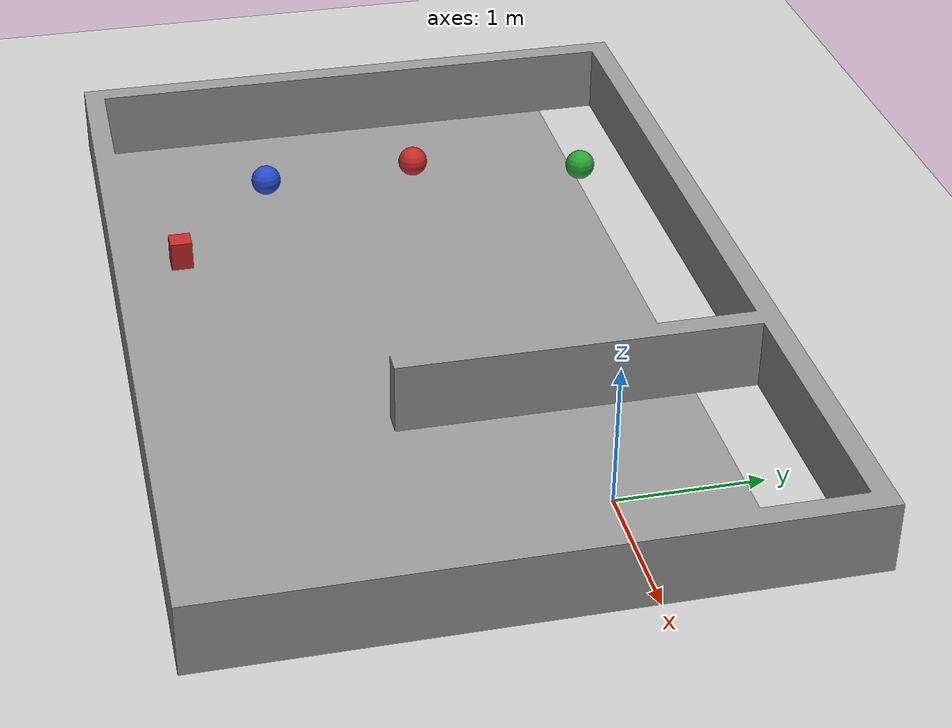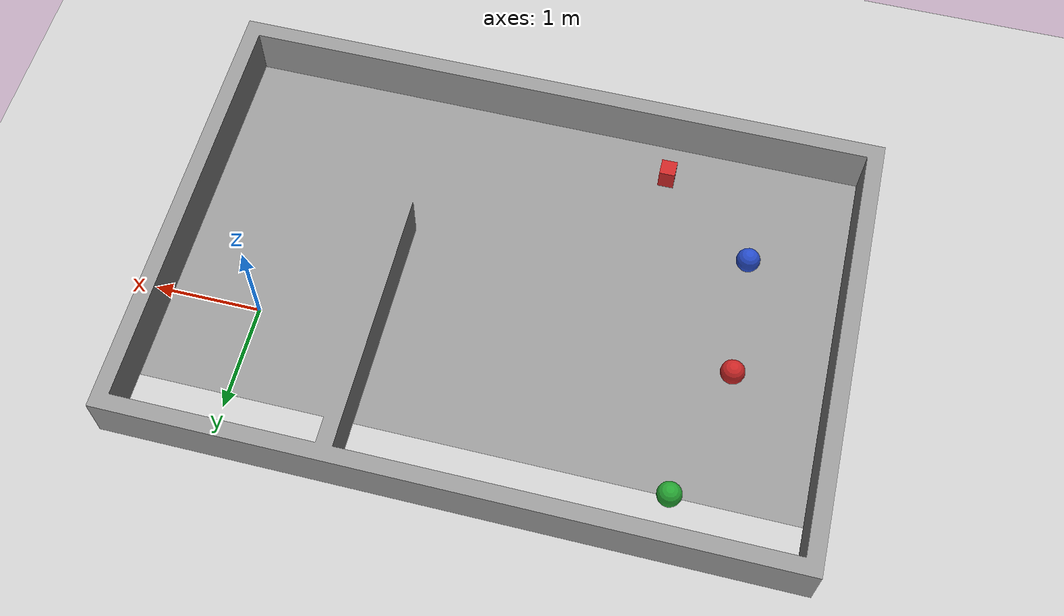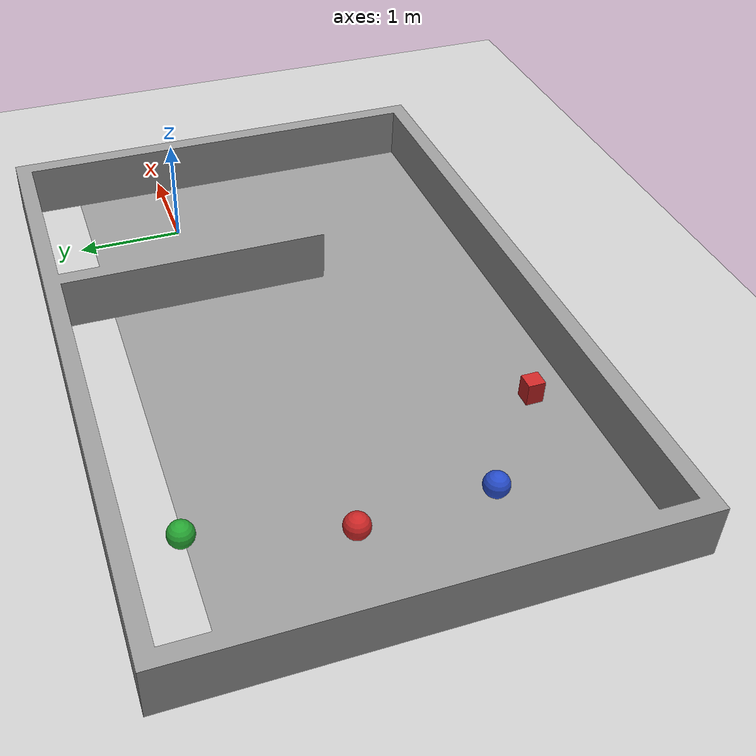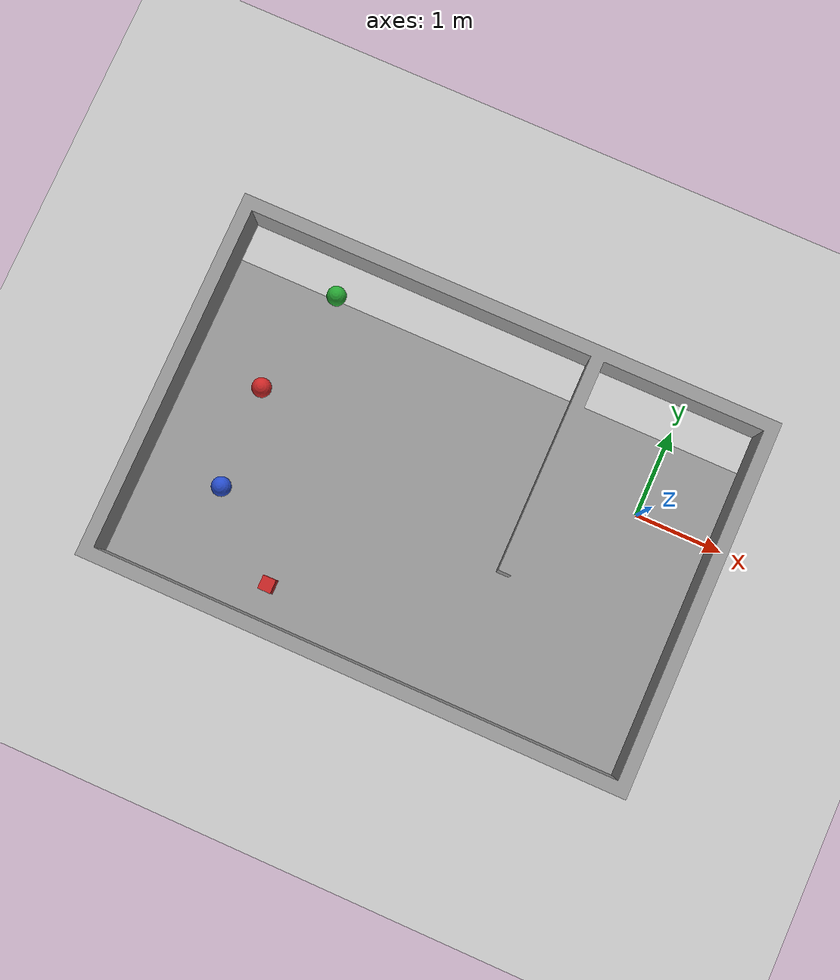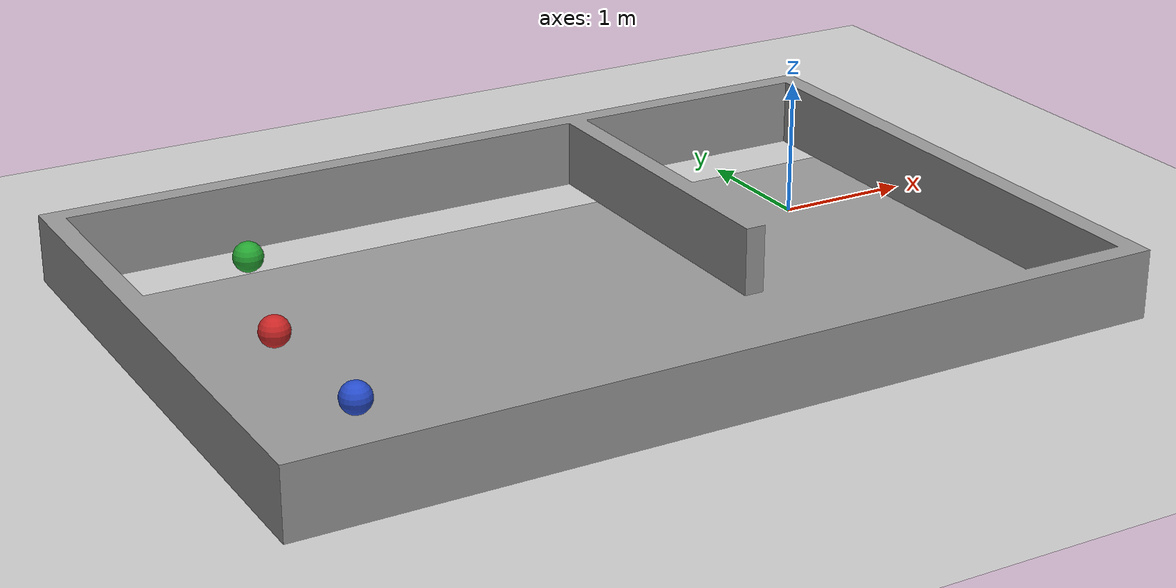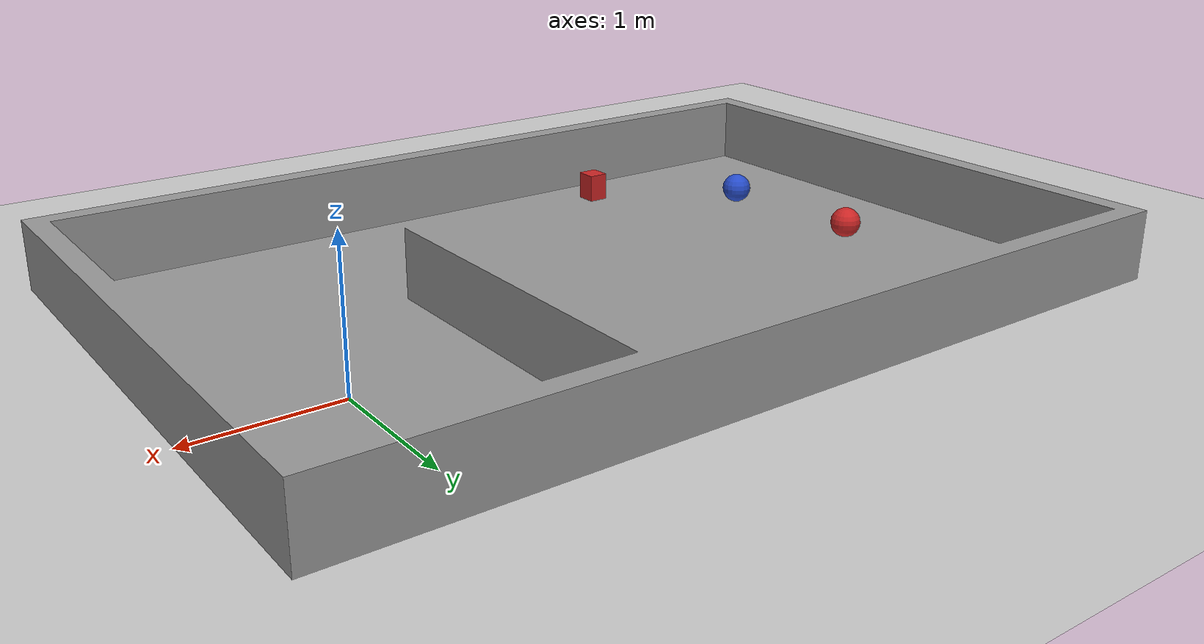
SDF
<sdf version="1.7">
 <world name="default">
  <model name="ground_plane">
   <static>1</static>
   <link name="link">
    <collision name="collision">
     <geometry><plane><normal>0 0 1</normal><size>100 100</size></plane></geometry>
     <surface><friction><ode><mu>100</mu><mu2>50</mu2></ode></friction></surface>
    </collision>
    <visual name="visual">
     <cast_shadows>0</cast_shadows>
     <geometry><plane><normal>0 0 1</normal><size>100 100</size></plane></geometry>
     <material>
      <script><uri>file://media/materials/scripts/gazebo.material</uri><name>Gazebo/Grey</name></script>
     </material>
    </visual>
   </link>
  </model>
  <model name="simple">
   <link name="link_0">
    <inertial>
     <mass>100</mass>
     <inertia>
      <ixx>0.166667</ixx>
      <ixy>0</ixy>
      <ixz>0</ixz>
      <iyy>0.166667</iyy>
      <iyz>0</iyz>
      <izz>0.166667</izz>
     </inertia>
    </inertial>
    <pose>0 0 0 1.57 -0 0</pose>
    <visual name="visual">
     <geometry><mesh><uri>model://simple.stl</uri><scale>0.001 0.001 0.001</scale></mesh></geometry>
     <material>
      <lighting>1</lighting>
      <script><uri>file://media/materials/scripts/gazebo.material</uri><name>Gazebo/Grey</name></script>
      <shader type="pixel"><normal_map>__default__</normal_map></shader>
      <ambient>0.3 0.3 0.3 1</ambient>
      <diffuse>0.7 0.7 0.7 1</diffuse>
      <specular>0.01 0.01 0.01 1</specular>
      <emissive>0 0 0 1</emissive>
     </material>
    </visual>
    <collision name="collision">
     <geometry><mesh><uri>model://simple.stl</uri><scale>0.001 0.001 0.001</scale></mesh></geometry>
     <surface><friction><ode><mu>100</mu><mu2>50</mu2></ode></friction></surface>
    </collision>
   </link>
   <static>1</static>
   <pose>-5.16281 -2.68744 -0.054811 0 -0 0</pose>
  </model>
  <model name="unit_box_clone_2">
   <link name="link">
    <inertial>
     <mass>1</mass>
     <inertia>
      <ixx>0.166667</ixx>
      <ixy>0</ixy>
      <ixz>0</ixz>
      <iyy>0.166667</iyy>
      <iyz>0</iyz>
      <izz>0.166667</izz>
     </inertia>
    </inertial>
    <visual name="visual">
     <geometry><box><size>0.150535 0.15817 0.21384</size></box></geometry>
     <material>
      <script><name>Gazebo/Red</name><uri>file://media/materials/scripts/gazebo.material</uri></script>
      <shader type="pixel"><normal_map>__default__</normal_map></shader>
      <ambient>1 0 0 1</ambient>
      <diffuse>1 0 0 1</diffuse>
      <specular>0.1 0.1 0.1 1</specular>
      <emissive>0 0 0 1</emissive>
     </material>
    </visual>
    <collision name="collision">
     <geometry><box><size>0.150535 0.15817 0.21384</size></box></geometry>
     <surface>
      <friction>
       <ode><mu>1</mu><mu2>1</mu2><fdir1>0 0 0</fdir1><slip1>0</slip1><slip2>0</slip2></ode>
       <torsional>
        <coefficient>1</coefficient>
        <patch_radius>0</patch_radius>
        <surface_radius>0</surface_radius>
        <use_patch_radius>1</use_patch_radius>
        <ode><slip>0</slip></ode>
       </torsional>
      </friction>
      <bounce><restitution_coefficient>0</restitution_coefficient><threshold>1e+06</threshold></bounce>
      <contact>
       <collide_without_contact>0</collide_without_contact>
       <collide_without_contact_bitmask>1</collide_without_contact_bitmask>
       <collide_bitmask>1</collide_bitmask>
       <ode>
        <soft_cfm>0</soft_cfm>
        <soft_erp>0.2</soft_erp>
        <kp>1e+13</kp>
        <kd>1</kd>
        <max_vel>0.01</max_vel>
        <min_depth>0</min_depth>
       </ode>
       <bullet>
        <split_impulse>1</split_impulse>
        <split_impulse_penetration_threshold>-0.01</split_impulse_penetration_threshold>
        <soft_cfm>0</soft_cfm>
        <soft_erp>0.2</soft_erp>
        <kp>1e+13</kp>
        <kd>1</kd>
       </bullet>
      </contact>
     </surface>
    </collision>
   </link>
   <static>0</static>
   <pose>-3.3678 -2.31304 0.10692 3e-06 2e-06 0.007425</pose>
  </model>
  <model name="unit_sphere_clone_2">
   <link name="link">
    <inertial>
     <mass>1</mass>
     <inertia><ixx>0.1</ixx><ixy>0</ixy><ixz>0</ixz><iyy>0.1</iyy><iyz>0</iyz><izz>0.1</izz></inertia>
    </inertial>
    <visual name="visual">
     <geometry><sphere><radius>0.112485</radius></sphere></geometry>
     <material>
      <script><name>Gazebo/Green</name><uri>file://media/materials/scripts/gazebo.material</uri></script>
      <shader type="pixel"><normal_map>__default__</normal_map></shader>
      <ambient>0 1 0 1</ambient>
      <diffuse>0 1 0 1</diffuse>
      <specular>0.1 0.1 0.1 1</specular>
      <emissive>0 0 0 1</emissive>
     </material>
    </visual>
    <collision name="collision">
     <geometry><sphere><radius>0.112485</radius></sphere></geometry>
     <surface>
      <friction>
       <ode><mu>1</mu><mu2>1</mu2><fdir1>0 0 0</fdir1><slip1>0</slip1><slip2>0</slip2></ode>
       <torsional>
        <coefficient>1</coefficient>
        <patch_radius>0</patch_radius>
        <surface_radius>0</surface_radius>
        <use_patch_radius>1</use_patch_radius>
        <ode><slip>0</slip></ode>
       </torsional>
      </friction>
      <bounce><restitution_coefficient>0</restitution_coefficient><threshold>1e+06</threshold></bounce>
      <contact>
       <collide_without_contact>0</collide_without_contact>
       <collide_without_contact_bitmask>1</collide_without_contact_bitmask>
       <collide_bitmask>1</collide_bitmask>
       <ode>
        <soft_cfm>0</soft_cfm>
        <soft_erp>0.2</soft_erp>
        <kp>1e+13</kp>
        <kd>1</kd>
        <max_vel>0.01</max_vel>
        <min_depth>0</min_depth>
       </ode>
       <bullet>
        <split_impulse>1</split_impulse>
        <split_impulse_penetration_threshold>-0.01</split_impulse_penetration_threshold>
        <soft_cfm>0</soft_cfm>
        <soft_erp>0.2</soft_erp>
        <kp>1e+13</kp>
        <kd>1</kd>
       </bullet>
      </contact>
     </surface>
    </collision>
   </link>
   <static>0</static>
   <pose>-3.99804 0.898474 0.112485 0 -0 0</pose>
  </model>
  <model name="unit_sphere_clone">
   <link name="link">
    <inertial>
     <mass>1</mass>
     <inertia><ixx>0.1</ixx><ixy>0</ixy><ixz>0</ixz><iyy>0.1</iyy><iyz>0</iyz><izz>0.1</izz></inertia>
    </inertial>
    <visual name="visual">
     <geometry><sphere><radius>0.112485</radius></sphere></geometry>
     <material>
      <script><name>Gazebo/Red</name><uri>file://media/materials/scripts/gazebo.material</uri></script>
      <shader type="pixel"><normal_map>__default__</normal_map></shader>
      <ambient>1 0 0 1</ambient>
      <diffuse>1 0 0 1</diffuse>
      <specular>0.1 0.1 0.1 1</specular>
      <emissive>0 0 0 1</emissive>
     </material>
    </visual>
    <collision name="collision">
     <geometry><sphere><radius>0.112485</radius></sphere></geometry>
     <surface>
      <friction>
       <ode><mu>1</mu><mu2>1</mu2><fdir1>0 0 0</fdir1><slip1>0</slip1><slip2>0</slip2></ode>
       <torsional>
        <coefficient>1</coefficient>
        <patch_radius>0</patch_radius>
        <surface_radius>0</surface_radius>
        <use_patch_radius>1</use_patch_radius>
        <ode><slip>0</slip></ode>
       </torsional>
      </friction>
      <bounce><restitution_coefficient>0</restitution_coefficient><threshold>1e+06</threshold></bounce>
      <contact>
       <collide_without_contact>0</collide_without_contact>
       <collide_without_contact_bitmask>1</collide_without_contact_bitmask>
       <collide_bitmask>1</collide_bitmask>
       <ode>
        <soft_cfm>0</soft_cfm>
        <soft_erp>0.2</soft_erp>
        <kp>1e+13</kp>
        <kd>1</kd>
        <max_vel>0.01</max_vel>
        <min_depth>0</min_depth>
       </ode>
       <bullet>
        <split_impulse>1</split_impulse>
        <split_impulse_penetration_threshold>-0.01</split_impulse_penetration_threshold>
        <soft_cfm>0</soft_cfm>
        <soft_erp>0.2</soft_erp>
        <kp>1e+13</kp>
        <kd>1</kd>
       </bullet>
      </contact>
     </surface>
    </collision>
   </link>
   <static>0</static>
   <pose>-4.32967 -0.373436 0.112485 0 -0 0</pose>
  </model>
  <model name="unit_sphere_clone_0">
   <link name="link">
    <inertial>
     <mass>1</mass>
     <inertia><ixx>0.1</ixx><ixy>0</ixy><ixz>0</ixz><iyy>0.1</iyy><iyz>0</iyz><izz>0.1</izz></inertia>
    </inertial>
    <visual name="visual">
     <geometry><sphere><radius>0.112485</radius></sphere></geometry>
     <material>
      <script><name>Gazebo/Blue</name><uri>file://media/materials/scripts/gazebo.material</uri></script>
      <shader type="pixel"><normal_map>__default__</normal_map></shader>
      <ambient>0 0 1 1</ambient>
      <diffuse>0 0 1 1</diffuse>
      <specular>0.1 0.1 0.1 1</specular>
      <emissive>0 0 0 1</emissive>
     </material>
    </visual>
    <collision name="collision">
     <geometry><sphere><radius>0.112485</radius></sphere></geometry>
     <surface>
      <friction>
       <ode><mu>1</mu><mu2>1</mu2><fdir1>0 0 0</fdir1><slip1>0</slip1><slip2>0</slip2></ode>
       <torsional>
        <coefficient>1</coefficient>
        <patch_radius>0</patch_radius>
        <surface_radius>0</surface_radius>
        <use_patch_radius>1</use_patch_radius>
        <ode><slip>0</slip></ode>
       </torsional>
      </friction>
      <bounce><restitution_coefficient>0</restitution_coefficient><threshold>1e+06</threshold></bounce>
      <contact>
       <collide_without_contact>0</collide_without_contact>
       <collide_without_contact_bitmask>1</collide_without_contact_bitmask>
       <collide_bitmask>1</collide_bitmask>
       <ode>
        <soft_cfm>0</soft_cfm>
        <soft_erp>0.2</soft_erp>
        <kp>1e+13</kp>
        <kd>1</kd>
        <max_vel>0.01</max_vel>
        <min_depth>0</min_depth>
       </ode>
       <bullet>
        <split_impulse>1</split_impulse>
        <split_impulse_penetration_threshold>-0.01</split_impulse_penetration_threshold>
        <soft_cfm>0</soft_cfm>
        <soft_erp>0.2</soft_erp>
        <kp>1e+13</kp>
        <kd>1</kd>
       </bullet>
      </contact>
     </surface>
    </collision>
   </link>
   <static>0</static>
   <pose>-4.27707 -1.5465 0.112485 0.033862 -0.02932 -0.135626</pose>
  </model>
 </world>
</sdf>
